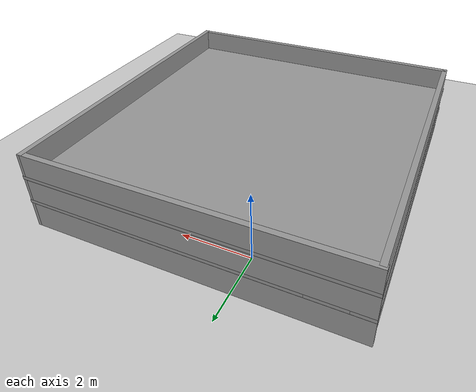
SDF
<sdf version="1.7">
 <world name="default">
  <light name="sun" type="directional">
   <pose>0 0 10 0 -0 0</pose>
   <diffuse>0.8 0.8 0.8 1</diffuse>
   <specular>0.2 0.2 0.2 1</specular>
   <attenuation>
    <range>1000</range>
    <constant>0.9</constant>
    <linear>0.01</linear>
    <quadratic>0.001</quadratic>
   </attenuation>
   <direction>-0.5 0.1 -0.9</direction>
   <spot><inner_angle>0</inner_angle><outer_angle>0</outer_angle><falloff>0</falloff></spot>
  </light>
  <model name="ground_plane">
   <static>1</static>
   <link name="link">
    <collision name="collision">
     <geometry><plane><normal>0 0 1</normal><size>100 100</size></plane></geometry>
     <surface>
      <contact><collide_bitmask>65535</collide_bitmask></contact>
      <friction><ode><mu>100</mu><mu2>50</mu2></ode></friction>
     </surface>
    </collision>
    <visual name="visual">
     <cast_shadows>0</cast_shadows>
     <geometry><plane><normal>0 0 1</normal><size>100 100</size></plane></geometry>
     <material>
      <script><uri>file://media/materials/scripts/gazebo.material</uri><name>Gazebo/Grey</name></script>
     </material>
    </visual>
   </link>
  </model>
  <gravity>0 0 -9.8</gravity>
  <magnetic_field>6e-06 2.3e-05 -4.2e-05</magnetic_field>
  <atmosphere type="adiabatic"/>
  <physics type="ode">
   <max_step_size>0.001</max_step_size>
   <real_time_factor>1</real_time_factor>
   <real_time_update_rate>1000</real_time_update_rate>
  </physics>
  <scene><ambient>0.4 0.4 0.4 1</ambient><background>0.7 0.7 0.7 1</background><shadows>1</shadows></scene>
  <spherical_coordinates>
   <surface_model>EARTH_WGS84</surface_model>
   <latitude_deg>0</latitude_deg>
   <longitude_deg>0</longitude_deg>
   <elevation>0</elevation>
   <heading_deg>0</heading_deg>
  </spherical_coordinates>
  <model name="test1">
   <pose>1.22456 -3.4577 0 0 -0 0</pose>
   <link name="Floor_1">
    <pose>-0 -0 0.753 0 -0 0</pose>
    <visual name="Floor_1_Visual_0">
     <pose>-4.23308 0 0.05 0 -0 0</pose>
     <geometry><box><size>0.554126 9.31931 0.1</size></box></geometry>
     <material>
      <script><uri>file://media/materials/scripts/gazebo.material</uri><name>Gazebo/Grey</name></script>
      <ambient>1 1 1 1</ambient>
     </material>
     <meta><layer>1</layer></meta>
    </visual>
    <collision name="Floor_1_Collision_0">
     <geometry><box><size>0.554126 9.31931 0.1</size></box></geometry>
     <pose>-4.23308 0 0.05 0 -0 0</pose>
    </collision>
    <visual name="Floor_1_Visual_1">
     <pose>0.277063 -3.79837 0.05 0 -0 0</pose>
     <geometry><box><size>8.46615 1.72257 0.1</size></box></geometry>
     <material>
      <script><uri>file://media/materials/scripts/gazebo.material</uri><name>Gazebo/Grey</name></script>
      <ambient>1 1 1 1</ambient>
     </material>
     <meta><layer>1</layer></meta>
    </visual>
    <collision name="Floor_1_Collision_1">
     <geometry><box><size>8.46615 1.72257 0.1</size></box></geometry>
     <pose>0.277063 -3.79837 0.05 0 -0 0</pose>
    </collision>
    <visual name="Floor_1_Visual_2">
     <pose>0.777063 0.861285 0.05 0 -0 0</pose>
     <geometry><box><size>7.46615 7.59674 0.1</size></box></geometry>
     <material>
      <script><uri>file://media/materials/scripts/gazebo.material</uri><name>Gazebo/Grey</name></script>
      <ambient>1 1 1 1</ambient>
     </material>
     <meta><layer>1</layer></meta>
    </visual>
    <collision name="Floor_1_Collision_2">
     <geometry><box><size>7.46615 7.59674 0.1</size></box></geometry>
     <pose>0.777063 0.861285 0.05 0 -0 0</pose>
    </collision>
    <visual name="Floor_1_Visual_3">
     <pose>-3.45601 3.86129 0.05 0 -0 0</pose>
     <geometry><box><size>1 1.59674 0.1</size></box></geometry>
     <material>
      <script><uri>file://media/materials/scripts/gazebo.material</uri><name>Gazebo/Grey</name></script>
      <ambient>1 1 1 1</ambient>
     </material>
     <meta><layer>1</layer></meta>
    </visual>
    <collision name="Floor_1_Collision_3">
     <geometry><box><size>1 1.59674 0.1</size></box></geometry>
     <pose>-3.45601 3.86129 0.05 0 -0 0</pose>
    </collision>
   </link>
   <link name="Floor_2">
    <collision name="Floor_2_Collision">
     <geometry><box><size>9.02028 9.31931 0.1</size></box></geometry>
     <pose>0 0 0.05 0 -0 0</pose>
    </collision>
    <visual name="Floor_2_Visual">
     <pose>0 0 0.05 0 -0 0</pose>
     <geometry><box><size>9.02028 9.31931 0.1</size></box></geometry>
     <material>
      <script><uri>file://media/materials/scripts/gazebo.material</uri><name>Gazebo/Grey</name></script>
      <ambient>1 1 1 1</ambient>
     </material>
     <meta><layer>2</layer></meta>
    </visual>
    <pose>-0 -0 1.506 0 -0 0</pose>
   </link>
   <link name="Stairs_2">
    <visual name="Stairs_2_Visual_0">
     <pose>-3.45601 2.86292 0.025 0 -0 0</pose>
     <geometry><box><size>1 0.4 0.05</size></box></geometry>
     <material>
      <script><uri>file://media/materials/scripts/gazebo.material</uri><name>Gazebo/Grey</name></script>
      <ambient>1 1 1 1</ambient>
     </material>
     <meta><layer>0</layer></meta>
    </visual>
    <collision name="Stairs_2_Collision_0">
     <geometry><box><size>1 0.4 0.05</size></box></geometry>
     <pose>-3.45601 2.86292 0.025 0 -0 0</pose>
    </collision>
    <visual name="Stairs_2_Visual_1">
     <pose>-3.45601 2.46292 0.075 0 -0 0</pose>
     <geometry><box><size>1 0.4 0.05</size></box></geometry>
     <material>
      <script><uri>file://media/materials/scripts/gazebo.material</uri><name>Gazebo/Grey</name></script>
      <ambient>1 1 1 1</ambient>
     </material>
     <meta><layer>0</layer></meta>
    </visual>
    <collision name="Stairs_2_Collision_1">
     <geometry><box><size>1 0.4 0.05</size></box></geometry>
     <pose>-3.45601 2.46292 0.075 0 -0 0</pose>
    </collision>
    <visual name="Stairs_2_Visual_2">
     <pose>-3.45601 2.06292 0.125 0 -0 0</pose>
     <geometry><box><size>1 0.4 0.05</size></box></geometry>
     <material>
      <script><uri>file://media/materials/scripts/gazebo.material</uri><name>Gazebo/Grey</name></script>
      <ambient>1 1 1 1</ambient>
     </material>
     <meta><layer>0</layer></meta>
    </visual>
    <collision name="Stairs_2_Collision_2">
     <geometry><box><size>1 0.4 0.05</size></box></geometry>
     <pose>-3.45601 2.06292 0.125 0 -0 0</pose>
    </collision>
    <visual name="Stairs_2_Visual_3">
     <pose>-3.45601 1.66292 0.175 0 -0 0</pose>
     <geometry><box><size>1 0.4 0.05</size></box></geometry>
     <material>
      <script><uri>file://media/materials/scripts/gazebo.material</uri><name>Gazebo/Grey</name></script>
      <ambient>1 1 1 1</ambient>
     </material>
     <meta><layer>0</layer></meta>
    </visual>
    <collision name="Stairs_2_Collision_3">
     <geometry><box><size>1 0.4 0.05</size></box></geometry>
     <pose>-3.45601 1.66292 0.175 0 -0 0</pose>
    </collision>
    <visual name="Stairs_2_Visual_4">
     <pose>-3.45601 1.26292 0.225 0 -0 0</pose>
     <geometry><box><size>1 0.4 0.05</size></box></geometry>
     <material>
      <script><uri>file://media/materials/scripts/gazebo.material</uri><name>Gazebo/Grey</name></script>
      <ambient>1 1 1 1</ambient>
     </material>
     <meta><layer>0</layer></meta>
    </visual>
    <collision name="Stairs_2_Collision_4">
     <geometry><box><size>1 0.4 0.05</size></box></geometry>
     <pose>-3.45601 1.26292 0.225 0 -0 0</pose>
    </collision>
    <visual name="Stairs_2_Visual_5">
     <pose>-3.45601 0.862917 0.275 0 -0 0</pose>
     <geometry><box><size>1 0.4 0.05</size></box></geometry>
     <material>
      <script><uri>file://media/materials/scripts/gazebo.material</uri><name>Gazebo/Grey</name></script>
      <ambient>1 1 1 1</ambient>
     </material>
     <meta><layer>0</layer></meta>
    </visual>
    <collision name="Stairs_2_Collision_5">
     <geometry><box><size>1 0.4 0.05</size></box></geometry>
     <pose>-3.45601 0.862917 0.275 0 -0 0</pose>
    </collision>
    <visual name="Stairs_2_Visual_6">
     <pose>-3.45601 0.462917 0.325 0 -0 0</pose>
     <geometry><box><size>1 0.4 0.05</size></box></geometry>
     <material>
      <script><uri>file://media/materials/scripts/gazebo.material</uri><name>Gazebo/Grey</name></script>
      <ambient>1 1 1 1</ambient>
     </material>
     <meta><layer>0</layer></meta>
    </visual>
    <collision name="Stairs_2_Collision_6">
     <geometry><box><size>1 0.4 0.05</size></box></geometry>
     <pose>-3.45601 0.462917 0.325 0 -0 0</pose>
    </collision>
    <visual name="Stairs_2_Visual_7">
     <pose>-3.45601 0.062917 0.375 0 -0 0</pose>
     <geometry><box><size>1 0.4 0.05</size></box></geometry>
     <material>
      <script><uri>file://media/materials/scripts/gazebo.material</uri><name>Gazebo/Grey</name></script>
      <ambient>1 1 1 1</ambient>
     </material>
     <meta><layer>0</layer></meta>
    </visual>
    <collision name="Stairs_2_Collision_7">
     <geometry><box><size>1 0.4 0.05</size></box></geometry>
     <pose>-3.45601 0.062917 0.375 0 -0 0</pose>
    </collision>
    <visual name="Stairs_2_Visual_8">
     <pose>-3.45601 -0.337083 0.425 0 -0 0</pose>
     <geometry><box><size>1 0.4 0.05</size></box></geometry>
     <material>
      <script><uri>file://media/materials/scripts/gazebo.material</uri><name>Gazebo/Grey</name></script>
      <ambient>1 1 1 1</ambient>
     </material>
     <meta><layer>0</layer></meta>
    </visual>
    <collision name="Stairs_2_Collision_8">
     <geometry><box><size>1 0.4 0.05</size></box></geometry>
     <pose>-3.45601 -0.337083 0.425 0 -0 0</pose>
    </collision>
    <visual name="Stairs_2_Visual_9">
     <pose>-3.45601 -0.737083 0.475 0 -0 0</pose>
     <geometry><box><size>1 0.4 0.05</size></box></geometry>
     <material>
      <script><uri>file://media/materials/scripts/gazebo.material</uri><name>Gazebo/Grey</name></script>
      <ambient>1 1 1 1</ambient>
     </material>
     <meta><layer>0</layer></meta>
    </visual>
    <collision name="Stairs_2_Collision_9">
     <geometry><box><size>1 0.4 0.05</size></box></geometry>
     <pose>-3.45601 -0.737083 0.475 0 -0 0</pose>
    </collision>
    <visual name="Stairs_2_Visual_10">
     <pose>-3.45601 -1.13708 0.525 0 -0 0</pose>
     <geometry><box><size>1 0.4 0.05</size></box></geometry>
     <material>
      <script><uri>file://media/materials/scripts/gazebo.material</uri><name>Gazebo/Grey</name></script>
      <ambient>1 1 1 1</ambient>
     </material>
     <meta><layer>0</layer></meta>
    </visual>
    <collision name="Stairs_2_Collision_10">
     <geometry><box><size>1 0.4 0.05</size></box></geometry>
     <pose>-3.45601 -1.13708 0.525 0 -0 0</pose>
    </collision>
    <visual name="Stairs_2_Visual_11">
     <pose>-3.45601 -1.53708 0.575 0 -0 0</pose>
     <geometry><box><size>1 0.4 0.05</size></box></geometry>
     <material>
      <script><uri>file://media/materials/scripts/gazebo.material</uri><name>Gazebo/Grey</name></script>
      <ambient>1 1 1 1</ambient>
     </material>
     <meta><layer>0</layer></meta>
    </visual>
    <collision name="Stairs_2_Collision_11">
     <geometry><box><size>1 0.4 0.05</size></box></geometry>
     <pose>-3.45601 -1.53708 0.575 0 -0 0</pose>
    </collision>
    <visual name="Stairs_2_Visual_12">
     <pose>-3.45601 -1.93708 0.625 0 -0 0</pose>
     <geometry><box><size>1 0.4 0.05</size></box></geometry>
     <material>
      <script><uri>file://media/materials/scripts/gazebo.material</uri><name>Gazebo/Grey</name></script>
      <ambient>1 1 1 1</ambient>
     </material>
     <meta><layer>0</layer></meta>
    </visual>
    <collision name="Stairs_2_Collision_12">
     <geometry><box><size>1 0.4 0.05</size></box></geometry>
     <pose>-3.45601 -1.93708 0.625 0 -0 0</pose>
    </collision>
    <visual name="Stairs_2_Visual_13">
     <pose>-3.45601 -2.33708 0.675 0 -0 0</pose>
     <geometry><box><size>1 0.4 0.05</size></box></geometry>
     <material>
      <script><uri>file://media/materials/scripts/gazebo.material</uri><name>Gazebo/Grey</name></script>
      <ambient>1 1 1 1</ambient>
     </material>
     <meta><layer>0</layer></meta>
    </visual>
    <collision name="Stairs_2_Collision_13">
     <geometry><box><size>1 0.4 0.05</size></box></geometry>
     <pose>-3.45601 -2.33708 0.675 0 -0 0</pose>
    </collision>
    <visual name="Stairs_2_Visual_14">
     <pose>-3.45601 -2.73708 0.725 0 -0 0</pose>
     <geometry><box><size>1 0.4 0.05</size></box></geometry>
     <material>
      <script><uri>file://media/materials/scripts/gazebo.material</uri><name>Gazebo/Grey</name></script>
      <ambient>1 1 1 1</ambient>
     </material>
     <meta><layer>0</layer></meta>
    </visual>
    <collision name="Stairs_2_Collision_14">
     <geometry><box><size>1 0.4 0.05</size></box></geometry>
     <pose>-3.45601 -2.73708 0.725 0 -0 0</pose>
    </collision>
   </link>
   <link name="Wall_0">
    <collision name="Wall_0_Collision">
     <geometry><box><size>9.25 0.15 0.75</size></box></geometry>
     <pose>0 0 0.375 0 -0 0</pose>
    </collision>
    <visual name="Wall_0_Visual">
     <pose>0 0 0.375 0 -0 0</pose>
     <geometry><box><size>9.25 0.15 0.75</size></box></geometry>
     <material>
      <script><uri>file://media/materials/scripts/gazebo.material</uri><name>Gazebo/Grey</name></script>
      <ambient>1 1 1 1</ambient>
     </material>
     <meta><layer>0</layer></meta>
    </visual>
    <pose>-4.41502 -0.034489 0 0 -0 -1.5708</pose>
   </link>
   <link name="Wall_1">
    <collision name="Wall_1_Collision">
     <geometry><box><size>9 0.15 0.75</size></box></geometry>
     <pose>0 0 0.375 0 -0 0</pose>
    </collision>
    <visual name="Wall_1_Visual">
     <pose>0 0 0.375 0 -0 0</pose>
     <geometry><box><size>9 0.15 0.75</size></box></geometry>
     <material>
      <script><uri>file://media/materials/scripts/gazebo.material</uri><name>Gazebo/Grey</name></script>
      <ambient>1 1 1 1</ambient>
     </material>
     <meta><layer>0</layer></meta>
    </visual>
    <pose>0.009975 -4.58449 0 0 -0 0</pose>
   </link>
   <link name="Wall_10">
    <collision name="Wall_10_Collision">
     <geometry><box><size>9 0.15 0.75</size></box></geometry>
     <pose>0 0 0.375 0 -0 0</pose>
    </collision>
    <visual name="Wall_10_Visual">
     <pose>0 0 0.375 0 -0 0</pose>
     <geometry><box><size>9 0.15 0.75</size></box></geometry>
     <material>
      <script><uri>file://media/materials/scripts/gazebo.material</uri><name>Gazebo/Grey</name></script>
      <ambient>1 1 1 1</ambient>
     </material>
     <meta><layer>1</layer></meta>
    </visual>
    <pose>0.009975 -4.58449 0.753 0 -0 0</pose>
   </link>
   <link name="Wall_11">
    <collision name="Wall_11_Collision">
     <geometry><box><size>9.319 0.15 0.753</size></box></geometry>
     <pose>0 0 0.3765 0 -0 0</pose>
    </collision>
    <visual name="Wall_11_Visual">
     <pose>0 0 0.3765 0 -0 0</pose>
     <geometry><box><size>9.319 0.15 0.753</size></box></geometry>
     <material>
      <script><uri>file://media/materials/scripts/gazebo.material</uri><name>Gazebo/Grey</name></script>
      <ambient>1 1 1 1</ambient>
     </material>
     <meta><layer>1</layer></meta>
    </visual>
    <pose>4.42492 -0 0.753 0 -0 1.57299</pose>
   </link>
   <link name="Wall_12">
    <collision name="Wall_12_Collision">
     <geometry><box><size>9 0.15 0.75</size></box></geometry>
     <pose>0 0 0.375 0 -0 0</pose>
    </collision>
    <visual name="Wall_12_Visual">
     <pose>0 0 0.375 0 -0 0</pose>
     <geometry><box><size>9 0.15 0.75</size></box></geometry>
     <material>
      <script><uri>file://media/materials/scripts/gazebo.material</uri><name>Gazebo/Grey</name></script>
      <ambient>1 1 1 1</ambient>
     </material>
     <meta><layer>1</layer></meta>
    </visual>
    <pose>-0.010139 4.58449 0.753 0 -0 3.14159</pose>
   </link>
   <link name="Wall_13">
    <collision name="Wall_13_Collision">
     <geometry><box><size>9.25 0.15 0.75</size></box></geometry>
     <pose>0 0 0.375 0 -0 0</pose>
    </collision>
    <visual name="Wall_13_Visual">
     <pose>0 0 0.375 0 -0 0</pose>
     <geometry><box><size>9.25 0.15 0.75</size></box></geometry>
     <material>
      <script><uri>file://media/materials/scripts/gazebo.material</uri><name>Gazebo/Grey</name></script>
      <ambient>1 1 1 1</ambient>
     </material>
     <meta><layer>2</layer></meta>
    </visual>
    <pose>-4.41502 -0.034489 1.506 0 -0 -1.5708</pose>
   </link>
   <link name="Wall_14">
    <collision name="Wall_14_Collision">
     <geometry><box><size>9 0.15 0.75</size></box></geometry>
     <pose>0 0 0.375 0 -0 0</pose>
    </collision>
    <visual name="Wall_14_Visual">
     <pose>0 0 0.375 0 -0 0</pose>
     <geometry><box><size>9 0.15 0.75</size></box></geometry>
     <material>
      <script><uri>file://media/materials/scripts/gazebo.material</uri><name>Gazebo/Grey</name></script>
      <ambient>1 1 1 1</ambient>
     </material>
     <meta><layer>2</layer></meta>
    </visual>
    <pose>0.009975 -4.58449 1.506 0 -0 0</pose>
   </link>
   <link name="Wall_15">
    <collision name="Wall_15_Collision">
     <geometry><box><size>9.319 0.15 0.753</size></box></geometry>
     <pose>0 0 0.3765 0 -0 0</pose>
    </collision>
    <visual name="Wall_15_Visual">
     <pose>0 0 0.3765 0 -0 0</pose>
     <geometry><box><size>9.319 0.15 0.753</size></box></geometry>
     <material>
      <script><uri>file://media/materials/scripts/gazebo.material</uri><name>Gazebo/Grey</name></script>
      <ambient>1 1 1 1</ambient>
     </material>
     <meta><layer>2</layer></meta>
    </visual>
    <pose>4.42492 -0 1.506 0 -0 1.57299</pose>
   </link>
   <link name="Wall_16">
    <collision name="Wall_16_Collision">
     <geometry><box><size>9 0.15 0.75</size></box></geometry>
     <pose>0 0 0.375 0 -0 0</pose>
    </collision>
    <visual name="Wall_16_Visual">
     <pose>0 0 0.375 0 -0 0</pose>
     <geometry><box><size>9 0.15 0.75</size></box></geometry>
     <material>
      <script><uri>file://media/materials/scripts/gazebo.material</uri><name>Gazebo/Grey</name></script>
      <ambient>1 1 1 1</ambient>
     </material>
     <meta><layer>2</layer></meta>
    </visual>
    <pose>-0.010139 4.58449 1.506 0 -0 3.14159</pose>
   </link>
   <link name="Wall_2">
    <collision name="Wall_2_Collision">
     <geometry><box><size>9.31907 0.15 0.753</size></box></geometry>
     <pose>0 0 0.3765 0 -0 0</pose>
    </collision>
    <visual name="Wall_2_Visual">
     <pose>0 0 0.3765 0 -0 0</pose>
     <geometry><box><size>9.31907 0.15 0.753</size></box></geometry>
     <material>
      <script><uri>file://media/materials/scripts/gazebo.material</uri><name>Gazebo/Grey</name></script>
      <ambient>1 1 1 1</ambient>
     </material>
     <meta><layer>0</layer></meta>
    </visual>
    <pose>4.42492 -0 0 0 -0 1.57299</pose>
   </link>
   <link name="Wall_3">
    <collision name="Wall_3_Collision">
     <geometry><box><size>9 0.15 0.75</size></box></geometry>
     <pose>0 0 0.375 0 -0 0</pose>
    </collision>
    <visual name="Wall_3_Visual">
     <pose>0 0 0.375 0 -0 0</pose>
     <geometry><box><size>9 0.15 0.75</size></box></geometry>
     <material>
      <script><uri>file://media/materials/scripts/gazebo.material</uri><name>Gazebo/Grey</name></script>
      <ambient>1 1 1 1</ambient>
     </material>
     <meta><layer>0</layer></meta>
    </visual>
    <pose>-0.010139 4.58449 0 0 -0 3.14159</pose>
   </link>
   <link name="Wall_9">
    <collision name="Wall_9_Collision">
     <geometry><box><size>9.25 0.15 0.75</size></box></geometry>
     <pose>0 0 0.375 0 -0 0</pose>
    </collision>
    <visual name="Wall_9_Visual">
     <pose>0 0 0.375 0 -0 0</pose>
     <geometry><box><size>9.25 0.15 0.75</size></box></geometry>
     <material>
      <script><uri>file://media/materials/scripts/gazebo.material</uri><name>Gazebo/Grey</name></script>
      <ambient>1 1 1 1</ambient>
     </material>
     <meta><layer>1</layer></meta>
    </visual>
    <pose>-4.41502 -0.034489 0.753 0 -0 -1.5708</pose>
   </link>
   <static>1</static>
  </model>
 </world>
</sdf>
